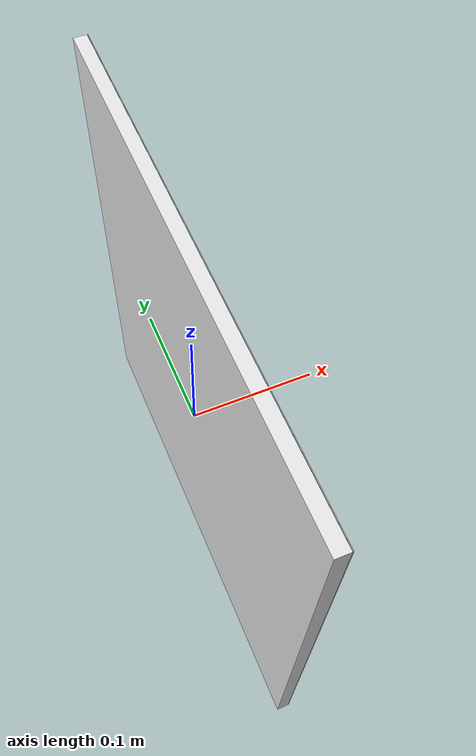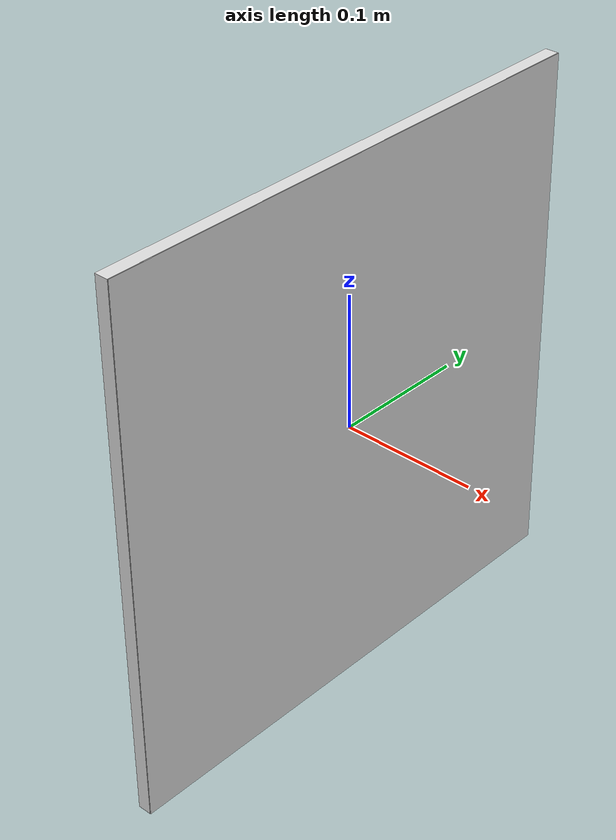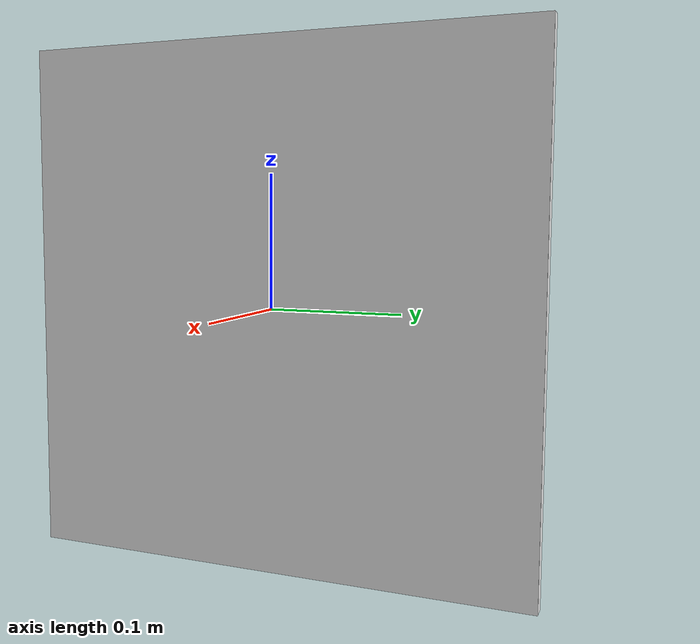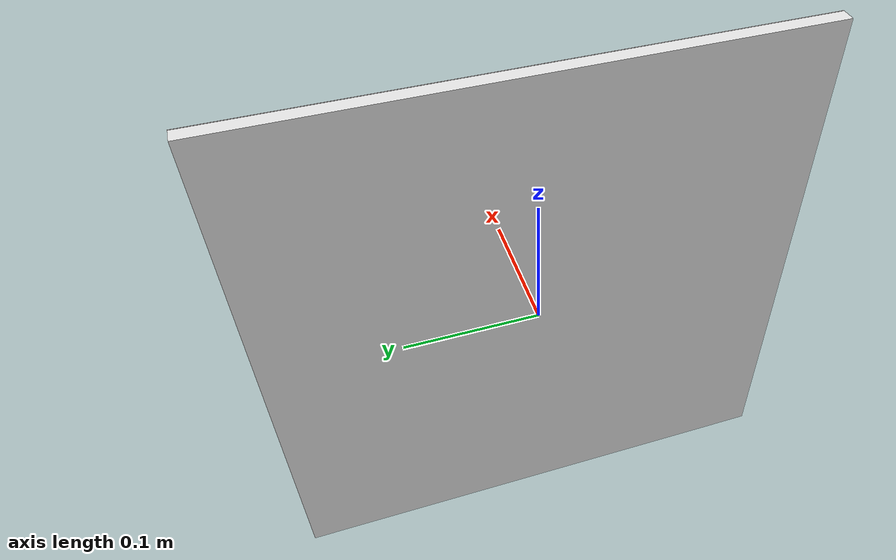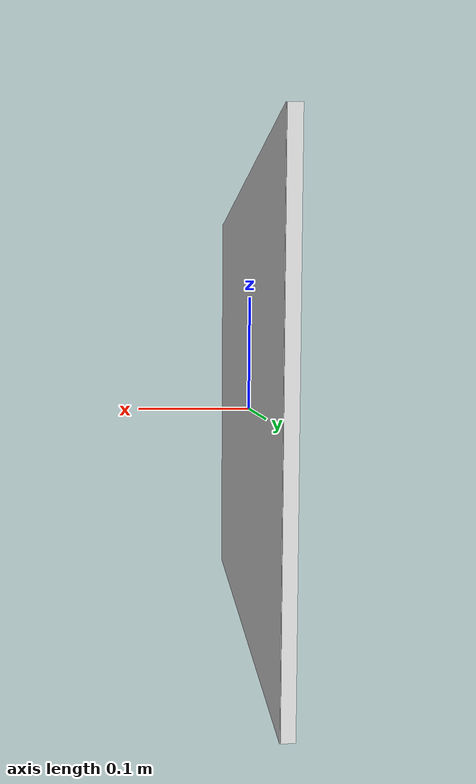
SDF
<?xml version="1.0"?>
<sdf version="1.6">
  <model name="aruco_marker_2">
    <static>true</static>
    <link name="link">
      <visual name="back">
        <geometry>
          <box><size>0.01 0.4 0.4</size></box>
        </geometry>
        <material>
          <ambient>0.9 0.9 0.9 1</ambient>
          <diffuse>0.9 0.9 0.9 1</diffuse>
        </material>
      </visual>
      <visual name="face">
        <pose>0.0055 0 0 0 0 0</pose>
        <geometry>
          <box><size>0.0005 0.4 0.4</size></box>
        </geometry>
        <material>
          <script>
            <uri>model://aruco_marker_2/materials/scripts</uri>
            <uri>model://aruco_marker_2/materials/textures</uri>
            <name>aruco_marker_2</name>
          </script>
        </material>
      </visual>
      <collision name="col">
        <geometry>
          <box><size>0.01 0.4 0.4</size></box>
        </geometry>
      </collision>
    </link>
  </model>
</sdf>
